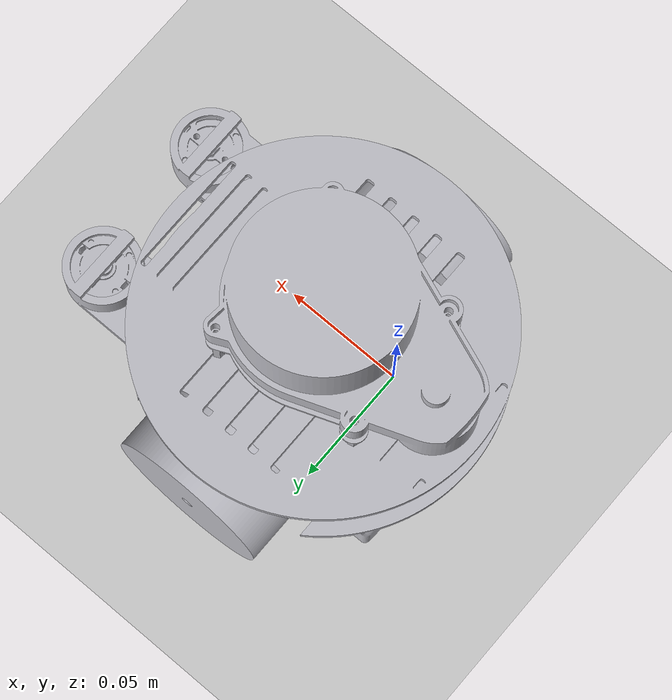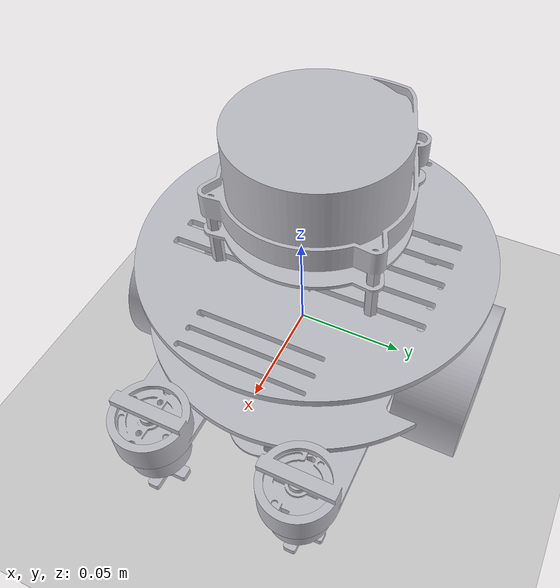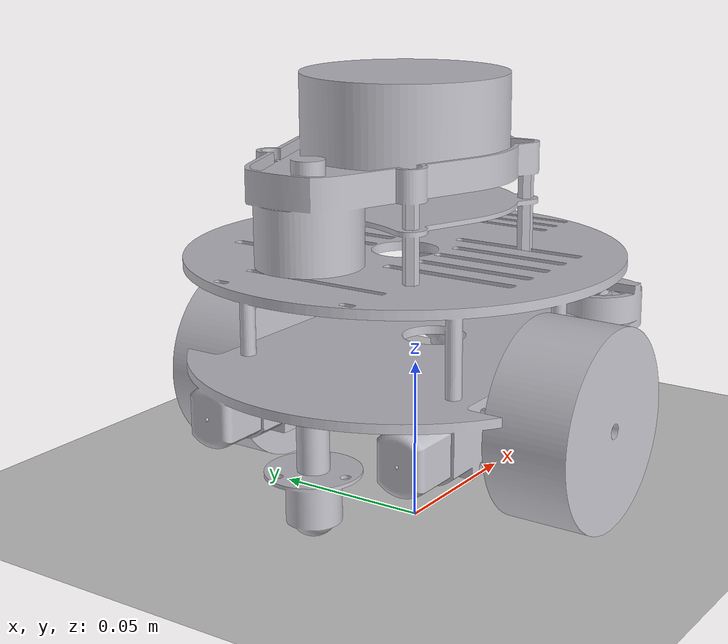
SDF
<sdf version="1.7">
 <world name="default">
  <light name="sun" type="directional">
   <pose>0 0 10 0 -0 0</pose>
   <diffuse>0.8 0.8 0.8 1</diffuse>
   <specular>0.2 0.2 0.2 1</specular>
   <attenuation>
    <range>1000</range>
    <constant>0.9</constant>
    <linear>0.01</linear>
    <quadratic>0.001</quadratic>
   </attenuation>
   <direction>-0.5 0.1 -0.9</direction>
   <spot><inner_angle>0</inner_angle><outer_angle>0</outer_angle><falloff>0</falloff></spot>
  </light>
  <model name="ground_plane">
   <static>1</static>
   <link name="link">
    <collision name="collision">
     <geometry><plane><normal>0 0 1</normal><size>100 100</size></plane></geometry>
     <surface><friction><ode><mu>100</mu><mu2>50</mu2></ode></friction></surface>
    </collision>
    <visual name="visual">
     <cast_shadows>0</cast_shadows>
     <geometry><plane><normal>0 0 1</normal><size>100 100</size></plane></geometry>
     <material>
      <script><uri>file://media/materials/scripts/gazebo.material</uri><name>Gazebo/Grey</name></script>
     </material>
    </visual>
   </link>
  </model>
  <gravity>0 0 -9.8</gravity>
  <magnetic_field>6e-06 2.3e-05 -4.2e-05</magnetic_field>
  <atmosphere type="adiabatic"/>
  <physics type="ode">
   <max_step_size>0.001</max_step_size>
   <real_time_factor>1</real_time_factor>
   <real_time_update_rate>1000</real_time_update_rate>
  </physics>
  <scene><ambient>0.4 0.4 0.4 1</ambient><background>0.7 0.7 0.7 1</background><shadows>1</shadows></scene>
  <spherical_coordinates>
   <surface_model>EARTH_WGS84</surface_model>
   <latitude_deg>0</latitude_deg>
   <longitude_deg>0</longitude_deg>
   <elevation>0</elevation>
   <heading_deg>0</heading_deg>
  </spherical_coordinates>
  <model name="auto_clean">
   <link name="base_link">
    <inertial>
     <pose>0.009137 0.017753 0.117278 0 -0 0</pose>
     <mass>1.81491</mass>
     <inertia>
      <ixx>0.00826339</ixx>
      <ixy>-5.50014e-07</ixy>
      <ixz>0.000142999</ixz>
      <iyy>0.00913843</iyy>
      <iyz>2.43588e-07</iyz>
      <izz>0.00286632</izz>
     </inertia>
    </inertial>
    <collision name="base_link_collision">
     <geometry>
      <mesh>
       <scale>0.001 0.001 0.001</scale>
       <uri>/home/siddharth/catkin_ws/src/auto_clean/Sid_Robo/auto_clean_description/meshes/base_link.stl</uri>
      </mesh>
     </geometry>
     <surface><friction><ode><mu>0.2</mu><mu2>0.2</mu2></ode></friction></surface>
    </collision>
    <collision name="base_link_fixed_joint_lump__front_Castor_collision_1">
     <geometry>
      <mesh>
       <scale>0.001 0.001 0.001</scale>
       <uri>/home/siddharth/catkin_ws/src/auto_clean/Sid_Robo/auto_clean_description/meshes/front_Castor_1.stl</uri>
      </mesh>
     </geometry>
     <surface><friction><ode><mu>0.2</mu><mu2>0.2</mu2></ode></friction></surface>
    </collision>
    <collision name="base_link_fixed_joint_lump__rear_Castor_collision_2">
     <geometry>
      <mesh>
       <scale>0.001 0.001 0.001</scale>
       <uri>/home/siddharth/catkin_ws/src/auto_clean/Sid_Robo/auto_clean_description/meshes/rear_Castor_1.stl</uri>
      </mesh>
     </geometry>
     <surface><friction><ode><mu>0.2</mu><mu2>0.2</mu2></ode></friction></surface>
    </collision>
    <collision name="base_link_fixed_joint_lump__ydlidar_X2L_collision_3">
     <pose>0 0 0.05 0 -0 0</pose>
     <geometry>
      <mesh>
       <scale>0.001 0.001 0.001</scale>
       <uri>/home/siddharth/catkin_ws/src/auto_clean/Sid_Robo/auto_clean_description/meshes/ydlidar_x4_v1_1.stl</uri>
      </mesh>
     </geometry>
     <surface><friction><ode><mu>0.2</mu><mu2>0.2</mu2></ode></friction></surface>
    </collision>
    <collision name="base_link_fixed_joint_lump__right_connect_collision_4">
     <geometry>
      <mesh>
       <scale>0.001 0.001 0.001</scale>
       <uri>/home/siddharth/catkin_ws/src/auto_clean/Sid_Robo/auto_clean_description/meshes/right_connect_1.stl</uri>
      </mesh>
     </geometry>
     <surface><friction><ode><mu>0.2</mu><mu2>0.2</mu2></ode></friction></surface>
    </collision>
    <collision name="base_link_fixed_joint_lump__right_brush_motor_collision_5">
     <geometry>
      <mesh>
       <scale>0.001 0.001 0.001</scale>
       <uri>/home/siddharth/catkin_ws/src/auto_clean/Sid_Robo/auto_clean_description/meshes/right_brush_motor_1.stl</uri>
      </mesh>
     </geometry>
     <surface><friction><ode><mu>0.2</mu><mu2>0.2</mu2></ode></friction></surface>
    </collision>
    <collision name="base_link_fixed_joint_lump__left_connect_collision_6">
     <geometry>
      <mesh>
       <scale>0.001 0.001 0.001</scale>
       <uri>/home/siddharth/catkin_ws/src/auto_clean/Sid_Robo/auto_clean_description/meshes/left_connect_v2_1.stl</uri>
      </mesh>
     </geometry>
     <surface><friction><ode><mu>0.2</mu><mu2>0.2</mu2></ode></friction></surface>
    </collision>
    <collision name="base_link_fixed_joint_lump__left_brush_motor_collision_7">
     <geometry>
      <mesh>
       <scale>0.001 0.001 0.001</scale>
       <uri>/home/siddharth/catkin_ws/src/auto_clean/Sid_Robo/auto_clean_description/meshes/left_brush_motor_1.stl</uri>
      </mesh>
     </geometry>
     <surface><friction><ode><mu>0.2</mu><mu2>0.2</mu2></ode></friction></surface>
    </collision>
    <visual name="base_link_visual">
     <geometry>
      <mesh>
       <scale>0.001 0.001 0.001</scale>
       <uri>/home/siddharth/catkin_ws/src/auto_clean/Sid_Robo/auto_clean_description/meshes/base_link.stl</uri>
      </mesh>
     </geometry>
     <material>
      <script><name>Gazebo/Silver</name><uri>file://media/materials/scripts/gazebo.material</uri></script>
     </material>
    </visual>
    <visual name="base_link_fixed_joint_lump__front_Castor_visual_1">
     <geometry>
      <mesh>
       <scale>0.001 0.001 0.001</scale>
       <uri>/home/siddharth/catkin_ws/src/auto_clean/Sid_Robo/auto_clean_description/meshes/front_Castor_1.stl</uri>
      </mesh>
     </geometry>
     <material>
      <script><name>Gazebo/Silver</name><uri>file://media/materials/scripts/gazebo.material</uri></script>
     </material>
    </visual>
    <visual name="base_link_fixed_joint_lump__rear_Castor_visual_2">
     <geometry>
      <mesh>
       <scale>0.001 0.001 0.001</scale>
       <uri>/home/siddharth/catkin_ws/src/auto_clean/Sid_Robo/auto_clean_description/meshes/rear_Castor_1.stl</uri>
      </mesh>
     </geometry>
     <material>
      <script><name>Gazebo/Silver</name><uri>file://media/materials/scripts/gazebo.material</uri></script>
     </material>
    </visual>
    <visual name="base_link_fixed_joint_lump__ydlidar_X2L_visual_3">
     <geometry>
      <mesh>
       <scale>0.001 0.001 0.001</scale>
       <uri>/home/siddharth/catkin_ws/src/auto_clean/Sid_Robo/auto_clean_description/meshes/ydlidar_x4_v1_1.stl</uri>
      </mesh>
     </geometry>
     <material>
      <script><name>Gazebo/Silver</name><uri>file://media/materials/scripts/gazebo.material</uri></script>
     </material>
    </visual>
    <visual name="base_link_fixed_joint_lump__right_connect_visual_4">
     <geometry>
      <mesh>
       <scale>0.001 0.001 0.001</scale>
       <uri>/home/siddharth/catkin_ws/src/auto_clean/Sid_Robo/auto_clean_description/meshes/right_connect_1.stl</uri>
      </mesh>
     </geometry>
     <material>
      <script><name>Gazebo/Silver</name><uri>file://media/materials/scripts/gazebo.material</uri></script>
     </material>
    </visual>
    <visual name="base_link_fixed_joint_lump__right_brush_motor_visual_5">
     <geometry>
      <mesh>
       <scale>0.001 0.001 0.001</scale>
       <uri>/home/siddharth/catkin_ws/src/auto_clean/Sid_Robo/auto_clean_description/meshes/right_brush_motor_1.stl</uri>
      </mesh>
     </geometry>
     <material>
      <script><name>Gazebo/Silver</name><uri>file://media/materials/scripts/gazebo.material</uri></script>
     </material>
    </visual>
    <visual name="base_link_fixed_joint_lump__left_connect_visual_6">
     <geometry>
      <mesh>
       <scale>0.001 0.001 0.001</scale>
       <uri>/home/siddharth/catkin_ws/src/auto_clean/Sid_Robo/auto_clean_description/meshes/left_connect_v2_1.stl</uri>
      </mesh>
     </geometry>
     <material>
      <script><name>Gazebo/Silver</name><uri>file://media/materials/scripts/gazebo.material</uri></script>
     </material>
    </visual>
    <visual name="base_link_fixed_joint_lump__left_brush_motor_visual_7">
     <geometry>
      <mesh>
       <scale>0.001 0.001 0.001</scale>
       <uri>/home/siddharth/catkin_ws/src/auto_clean/Sid_Robo/auto_clean_description/meshes/left_brush_motor_1.stl</uri>
      </mesh>
     </geometry>
     <material>
      <script><name>Gazebo/Silver</name><uri>file://media/materials/scripts/gazebo.material</uri></script>
     </material>
    </visual>
    <sensor name="head_hokuyo_sensor" type="ray">
     <visualize>1</visualize>
     <update_rate>20</update_rate>
     <ray>
      <scan>
       <horizontal>
        <samples>720</samples>
        <resolution>1</resolution>
        <min_angle>-3.14153</min_angle>
        <max_angle>3.14153</max_angle>
       </horizontal>
       <vertical><samples>1</samples><min_angle>0</min_angle><max_angle>0</max_angle></vertical>
      </scan>
      <range><min>0.05</min><max>8</max><resolution>0.05</resolution></range>
      <noise><type>gaussian</type><mean>0</mean><stddev>0.01</stddev></noise>
     </ray>
     <plugin name="gazebo_ros_head_hokuyo_controller" filename="libgazebo_ros_laser.so">
      <topicName>/scan</topicName>
      <frameName>ydlidar_X2L</frameName>
      <robotNamespace>/</robotNamespace>
     </plugin>
     <pose>0.015 0.01775 0.129 0 -0 0</pose>
    </sensor>
    <sensor name="right_brush_motor_camera" type="depth">
     <update_rate>20</update_rate>
     <camera>
      <horizontal_fov>1.0472</horizontal_fov>
      <image><width>640</width><height>480</height><format>R8G8B8</format></image>
      <clip><near>0.05</near><far>3</far></clip>
     </camera>
     <plugin name="right_brush_motor_controller" filename="libgazebo_ros_openni_kinect.so">
      <baseline>0.2</baseline>
      <alwaysOn>1</alwaysOn>
      <updateRate>1.0</updateRate>
      <cameraName>ir</cameraName>
      <imageTopicName>image_raw</imageTopicName>
      <cameraInfoTopicName>color/camera_info</cameraInfoTopicName>
      <depthImageTopicName>/depth/image_raw</depthImageTopicName>
      <depthImageInfoTopicName>/depth/camera_info</depthImageInfoTopicName>
      <pointCloudTopicName>/depth/points</pointCloudTopicName>
      <frameName>right_brush_motor</frameName>
      <pointCloudCutoff>0.5</pointCloudCutoff>
      <pointCloudCutoffMax>3.0</pointCloudCutoffMax>
      <distortionK1>0.00000001</distortionK1>
      <distortionK2>0.00000001</distortionK2>
      <distortionK3>0.00000001</distortionK3>
      <distortionT1>0.00000001</distortionT1>
      <distortionT2>0.00000001</distortionT2>
      <CxPrime>0</CxPrime>
      <Cx>0</Cx>
      <Cy>0</Cy>
      <focalLength>0</focalLength>
      <hackBaseline>0</hackBaseline>
      <robotNamespace>/</robotNamespace>
     </plugin>
     <pose>0.095 -0.01225 0.053 0 -0 0</pose>
    </sensor>
    <self_collide>1</self_collide>
   </link>
   <joint name="right_brush_joint" type="revolute">
    <pose relative_to="base_link">0.095 -0.01225 0.010733 0 -0 0</pose>
    <parent>base_link</parent>
    <child>right_brush</child>
    <axis>
     <xyz>0 0 -1</xyz>
     <limit><lower>-1e+16</lower><upper>1e+16</upper></limit>
     <dynamics><spring_reference>0</spring_reference><spring_stiffness>0</spring_stiffness></dynamics>
    </axis>
   </joint>
   <link name="right_brush">
    <pose relative_to="right_brush_joint">0 0 0 0 -0 0</pose>
    <inertial>
     <pose>-0 -0 0.0015 0 -0 0</pose>
     <mass>0.000574603</mass>
     <inertia><ixx>0</ixx><ixy>0</ixy><ixz>0</ixz><iyy>0</iyy><iyz>0</iyz><izz>0</izz></inertia>
    </inertial>
    <collision name="right_brush_collision">
     <pose>-0.095 0.01225 -0.010733 0 -0 0</pose>
     <geometry>
      <mesh>
       <scale>0.001 0.001 0.001</scale>
       <uri>/home/siddharth/catkin_ws/src/auto_clean/Sid_Robo/auto_clean_description/meshes/right_brush_1.stl</uri>
      </mesh>
     </geometry>
     <surface><friction><ode><mu>0.2</mu><mu2>0.2</mu2></ode></friction></surface>
    </collision>
    <visual name="right_brush_visual">
     <pose>-0.095 0.01225 -0.010733 0 -0 0</pose>
     <geometry>
      <mesh>
       <scale>0.001 0.001 0.001</scale>
       <uri>/home/siddharth/catkin_ws/src/auto_clean/Sid_Robo/auto_clean_description/meshes/right_brush_1.stl</uri>
      </mesh>
     </geometry>
     <material>
      <script><name>Gazebo/Silver</name><uri>file://media/materials/scripts/gazebo.material</uri></script>
     </material>
    </visual>
    <self_collide>1</self_collide>
   </link>
   <joint name="left_brush_joint" type="revolute">
    <pose relative_to="base_link">0.095 0.04775 0.01084 0 -0 0</pose>
    <parent>base_link</parent>
    <child>left_brush</child>
    <axis>
     <xyz>0 0 -1</xyz>
     <limit><lower>-1e+16</lower><upper>1e+16</upper></limit>
     <dynamics><spring_reference>0</spring_reference><spring_stiffness>0</spring_stiffness></dynamics>
    </axis>
   </joint>
   <link name="left_brush">
    <pose relative_to="left_brush_joint">0 0 0 0 -0 0</pose>
    <inertial>
     <pose>-0 -0 0.0015 0 -0 0</pose>
     <mass>0.000574603</mass>
     <inertia><ixx>0</ixx><ixy>0</ixy><ixz>0</ixz><iyy>0</iyy><iyz>0</iyz><izz>0</izz></inertia>
    </inertial>
    <collision name="left_brush_collision">
     <pose>-0.095 -0.04775 -0.01084 0 -0 0</pose>
     <geometry>
      <mesh>
       <scale>0.001 0.001 0.001</scale>
       <uri>/home/siddharth/catkin_ws/src/auto_clean/Sid_Robo/auto_clean_description/meshes/left_brush_1.stl</uri>
      </mesh>
     </geometry>
     <surface><friction><ode><mu>0.2</mu><mu2>0.2</mu2></ode></friction></surface>
    </collision>
    <visual name="left_brush_visual">
     <pose>-0.095 -0.04775 -0.01084 0 -0 0</pose>
     <geometry>
      <mesh>
       <scale>0.001 0.001 0.001</scale>
       <uri>/home/siddharth/catkin_ws/src/auto_clean/Sid_Robo/auto_clean_description/meshes/left_brush_1.stl</uri>
      </mesh>
     </geometry>
     <material>
      <script><name>Gazebo/Silver</name><uri>file://media/materials/scripts/gazebo.material</uri></script>
     </material>
    </visual>
    <self_collide>1</self_collide>
   </link>
   <joint name="left_drive" type="revolute">
    <pose relative_to="base_link">0.01725 0.07175 0.032 0 -0 0</pose>
    <parent>base_link</parent>
    <child>left_wheel</child>
    <axis>
     <xyz>0 1 0</xyz>
     <limit><lower>-1e+16</lower><upper>1e+16</upper></limit>
     <dynamics><spring_reference>0</spring_reference><spring_stiffness>0</spring_stiffness></dynamics>
    </axis>
   </joint>
   <link name="left_wheel">
    <pose relative_to="left_drive">0 0 0 0 -0 0</pose>
    <inertial>
     <pose>-0 0.00625 0 0 -0 0</pose>
     <mass>0.0714589</mass>
     <inertia><ixx>1.9e-05</ixx><ixy>0</ixy><ixz>0</ixz><iyy>2.9e-05</iyy><iyz>0</iyz><izz>1.9e-05</izz></inertia>
    </inertial>
    <collision name="left_wheel_collision">
     <pose>-0.01725 -0.07175 -0.032 0 -0 0</pose>
     <geometry>
      <mesh>
       <scale>0.001 0.001 0.001</scale>
       <uri>/home/siddharth/catkin_ws/src/auto_clean/Sid_Robo/auto_clean_description/meshes/left_wheel_v1_1.stl</uri>
      </mesh>
     </geometry>
     <surface>
      <contact><ode><kp>1e+06</kp><kd>1</kd><min_depth>0.001</min_depth></ode></contact>
      <friction><ode><mu>100</mu><mu2>100</mu2></ode></friction>
     </surface>
    </collision>
    <visual name="left_wheel_visual">
     <pose>-0.01725 -0.07175 -0.032 0 -0 0</pose>
     <geometry>
      <mesh>
       <scale>0.001 0.001 0.001</scale>
       <uri>/home/siddharth/catkin_ws/src/auto_clean/Sid_Robo/auto_clean_description/meshes/left_wheel_v1_1.stl</uri>
      </mesh>
     </geometry>
     <material>
      <script><name>Gazebo/Silver</name><uri>file://media/materials/scripts/gazebo.material</uri></script>
     </material>
    </visual>
    <self_collide>1</self_collide>
   </link>
   <joint name="right_drive" type="revolute">
    <pose relative_to="base_link">0.01725 -0.03625 0.032 0 -0 0</pose>
    <parent>base_link</parent>
    <child>right_wheel</child>
    <axis>
     <xyz>0 1 0</xyz>
     <limit><lower>-1e+16</lower><upper>1e+16</upper></limit>
     <dynamics><spring_reference>0</spring_reference><spring_stiffness>0</spring_stiffness></dynamics>
    </axis>
   </joint>
   <link name="right_wheel">
    <pose relative_to="right_drive">0 0 0 0 -0 0</pose>
    <inertial>
     <pose>-0 -0.00625 0 0 -0 0</pose>
     <mass>0.0714589</mass>
     <inertia><ixx>1.9e-05</ixx><ixy>0</ixy><ixz>0</ixz><iyy>2.9e-05</iyy><iyz>0</iyz><izz>1.9e-05</izz></inertia>
    </inertial>
    <collision name="right_wheel_collision">
     <pose>-0.01725 0.03625 -0.032 0 -0 0</pose>
     <geometry>
      <mesh>
       <scale>0.001 0.001 0.001</scale>
       <uri>/home/siddharth/catkin_ws/src/auto_clean/Sid_Robo/auto_clean_description/meshes/right_wheel_v1_1.stl</uri>
      </mesh>
     </geometry>
     <surface>
      <contact><ode><kp>1e+06</kp><kd>1</kd><min_depth>0.001</min_depth></ode></contact>
      <friction><ode><mu>100</mu><mu2>100</mu2></ode></friction>
     </surface>
    </collision>
    <visual name="right_wheel_visual">
     <pose>-0.01725 0.03625 -0.032 0 -0 0</pose>
     <geometry>
      <mesh>
       <scale>0.001 0.001 0.001</scale>
       <uri>/home/siddharth/catkin_ws/src/auto_clean/Sid_Robo/auto_clean_description/meshes/right_wheel_v1_1.stl</uri>
      </mesh>
     </geometry>
     <material>
      <script><name>Gazebo/Silver</name><uri>file://media/materials/scripts/gazebo.material</uri></script>
     </material>
    </visual>
    <self_collide>1</self_collide>
   </link>
   <plugin name="control" filename="libgazebo_ros_control.so"><robotNamespace>/</robotNamespace></plugin>
   <plugin name="differential_drive_controller" filename="libgazebo_ros_diff_drive.so">
    <updateRate>20</updateRate>
    <leftJoint>left_drive</leftJoint>
    <rightJoint>right_drive</rightJoint>
    <wheelSeparation>0.1205</wheelSeparation>
    <wheelDiameter>0.063</wheelDiameter>
    <wheelAcceleration>2.5</wheelAcceleration>
    <wheelTorque>1.0</wheelTorque>
    <commandTopic>/cmd_vel</commandTopic>
    <odometryTopic>/odom</odometryTopic>
    <odometryFrame>odom</odometryFrame>
    <robotBaseFrame>base_link</robotBaseFrame>
    <odometrySource>1</odometrySource>
    <publishWheelTF>0</publishWheelTF>
    <publishOdom>1</publishOdom>
    <publishWheelJointState>1</publishWheelJointState>
    <legacyMode>0</legacyMode>
    <robotNamespace>/</robotNamespace>
   </plugin>
   <frame name="Rigid4" attached_to="base_link"><pose>0.015 0.01775 0.043 0 -0 0</pose></frame>
   <frame name="front_Castor" attached_to="Rigid4"/>
   <frame name="Rigid5" attached_to="base_link"><pose>0.015 0.01775 0.043 0 -0 0</pose></frame>
   <frame name="rear_Castor" attached_to="Rigid5"/>
   <frame name="Rigid6" attached_to="base_link"><pose>0.015 0.01775 0.129 0 -0 0</pose></frame>
   <frame name="ydlidar_X2L" attached_to="Rigid6"/>
   <frame name="Rigid9" attached_to="right_connect"><pose>0.08 -0.03 0.01 0 -0 0</pose></frame>
   <frame name="right_brush_motor" attached_to="Rigid9"/>
   <frame name="Rigid7" attached_to="base_link"><pose>0.015 0.01775 0.043 0 -0 0</pose></frame>
   <frame name="right_connect" attached_to="Rigid7"/>
   <frame name="Rigid10" attached_to="left_connect"><pose>0.08 0.03 0.01 0 -0 0</pose></frame>
   <frame name="left_brush_motor" attached_to="Rigid10"/>
   <frame name="Rigid8" attached_to="base_link"><pose>0.015 0.01775 0.043 0 -0 0</pose></frame>
   <frame name="left_connect" attached_to="Rigid8"/>
   <pose>0.00566 -0.000362 -1.1e-05 -4.5e-05 -1e-06 0.000484</pose>
  </model>
 </world>
</sdf>
